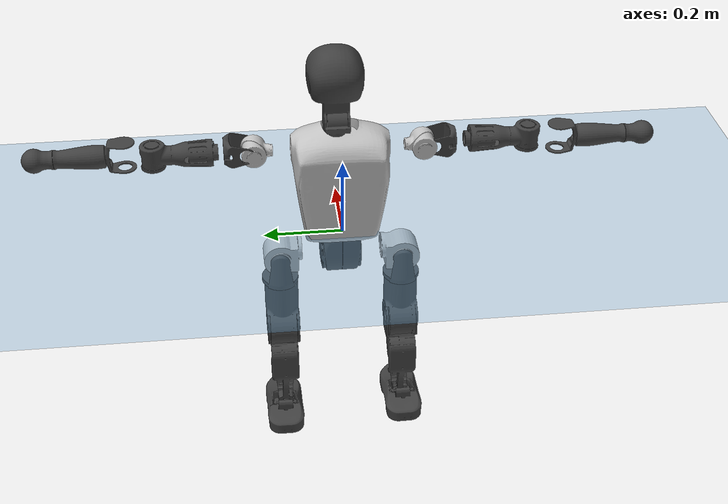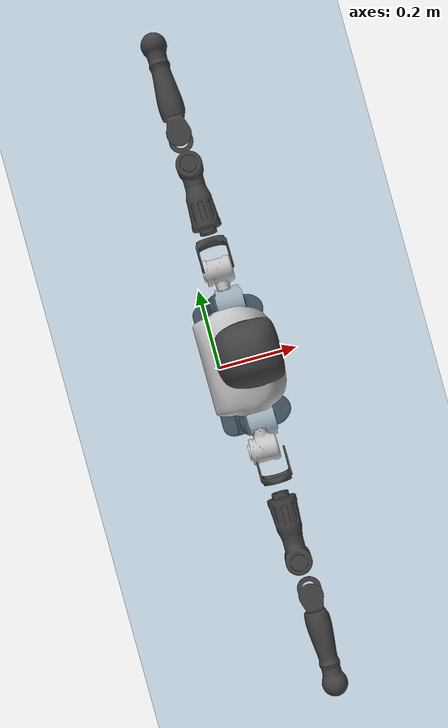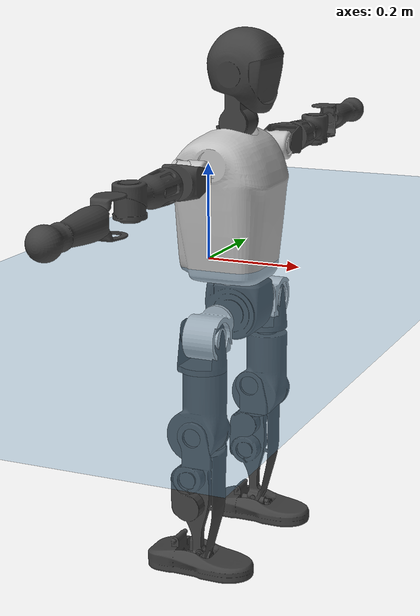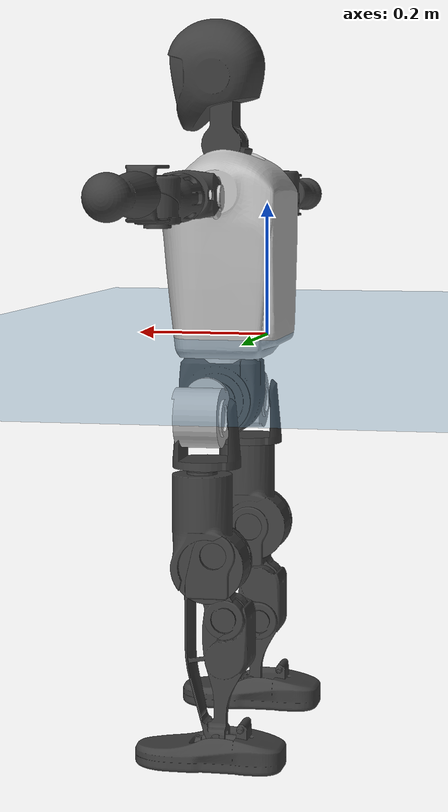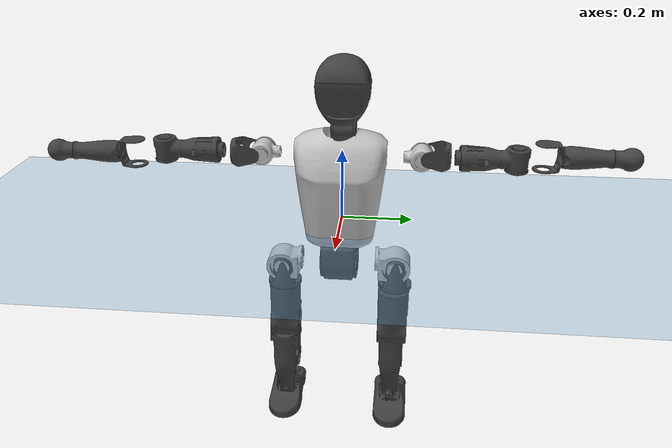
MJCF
<mujoco model="T1">
  <compiler angle="radian" assetdir="assets" balanceinertia="true" inertiafromgeom="false"/>

  <option timestep="0.005" density="1.2" viscosity="2e-05"/>

  <size nkey="1"/>

  <visual>
    <quality shadowsize="8192"/>
    <map shadowclip="0.5"/>
  </visual>

  <default>
    <default class="/">
      <joint armature="0.01" damping="0.01" frictionloss="0.1"/>
      <geom contype="0" conaffinity="0" group="1" solref="-1000 -80"/>
      <site size="0.01 0.005 0.005" group="5"/>
      <general forcelimited="true" biastype="affine" gainprm="25" biasprm="0 -25 -0.6"/>
      <default class="t1">
        <geom rgba="0.25 0.25 0.25 1"/>
        <default class="visual">
          <geom type="mesh" group="2"/>
        </default>
        <default class="collision">
          <geom group="3"/>
        </default>
        <default class="foot">
          <geom size="0.1115 0.05 0.015" type="box" condim="6" group="4" priority="1" solimp="0.015 1 0.015"/>
        </default>
        <default class="reward_collision_sphere">
          <geom group="5" rgba="1 0 0 1"/>
        </default>
      </default>
    </default>
  </default>

  <asset>
    <texture type="skybox" colorspace="auto" name="//unnamed_texture_0" builtin="gradient" rgb1="0.95 0.95 0.95" rgb2="0.95 0.95 0.95" width="100" height="600"/>
    <texture type="2d" colorspace="auto" name="texplane" builtin="checker" rgb1="0.345 0.575 0.748" rgb2="0.345 0.575 0.748" markrgb="1 1 1" width="512" height="512"/>
    <material name="MatPlane" class="/" texture="texplane" texuniform="true" texrepeat="2 2" specular="0.9"/>
    <mesh name="Trunk" class="/" file="Trunk.stl"/>
    <mesh name="H1" class="/" file="H1.stl"/>
    <mesh name="H2" class="/" file="H2.stl"/>
    <mesh name="AL1" class="/" file="AL1.stl"/>
    <mesh name="AL2" class="/" file="AL2.stl"/>
    <mesh name="AL3" class="/" file="AL3.stl"/>
    <mesh name="left_hand_link" class="/" file="left_hand_link.stl"/>
    <mesh name="AR1" class="/" file="AR1.stl"/>
    <mesh name="AR2" class="/" file="AR2.stl"/>
    <mesh name="AR3" class="/" file="AR3.stl"/>
    <mesh name="right_hand_link" class="/" file="right_hand_link.stl"/>
    <mesh name="Waist" class="/" file="Waist.stl"/>
    <mesh name="Hip_Pitch_Left" class="/" file="Hip_Pitch_Left.stl"/>
    <mesh name="Hip_Roll_Left" class="/" file="Hip_Roll_Left.stl"/>
    <mesh name="Hip_Yaw_Left" class="/" file="Hip_Yaw_Left.stl"/>
    <mesh name="Shank_Left" class="/" file="Shank_Left.stl"/>
    <mesh name="Ankle_Cross_Left" class="/" file="Ankle_Cross_Left.stl"/>
    <mesh name="left_foot_link" class="/" file="left_foot_link.stl"/>
    <mesh name="Hip_Pitch_Right" class="/" file="Hip_Pitch_Right.stl"/>
    <mesh name="Hip_Roll_Right" class="/" file="Hip_Roll_Right.stl"/>
    <mesh name="Hip_Yaw_Right" class="/" file="Hip_Yaw_Right.stl"/>
    <mesh name="Shank_Right" class="/" file="Shank_Right.stl"/>
    <mesh name="Ankle_Cross_Right" class="/" file="Ankle_Cross_Right.stl"/>
    <mesh name="right_foot_link" class="/" file="right_foot_link.stl"/>
  </asset>

  <worldbody>
    <geom name="floor" class="/" size="100 100 0.125" type="plane" group="0" material="MatPlane"/>
    <light name="toplight_shadow" class="/" pos="0 0 5" dir="0.0990148 0.0990148 -0.990148" type="directional" ambient="0.04 0.04 0.04" diffuse="0.55 0.55 0.55" specular="0.12 0.12 0.12"/>
    <light name="toplight_fill" class="/" pos="0 0 5" dir="0.0990148 0.0990148 -0.990148" type="directional" castshadow="false" ambient="0.04 0.04 0.04" diffuse="0.3 0.3 0.3" specular="0.08 0.08 0.08"/>
    <body name="trunk" childclass="t1" pos="-0.000599823 0.00145573 0.00102552" quat="1 0.0003473 -0.000526549 0.000597157">
      <inertial pos="0.0516021 -0.0103338 0.0911462" quat="0.99959 0.0212668 -0.0174905 -0.00778968" mass="19.4332" diaginertia="0.10582 0.652602 0.0432581"/>
      <joint name="//unnamed_joint_0" type="free" armature="0" damping="0" frictionloss="0"/>
      <geom name="//unnamed_geom_1" class="visual" rgba="0.76 0.76 0.76 1" mesh="Trunk"/>
      <geom name="//unnamed_geom_2" class="collision" size="0.0873093 0.116412 0.174619" pos="0.0613728 0 0.113326" type="box"/>
      <geom name="//unnamed_geom_3" class="reward_collision_sphere" size="0.133874" pos="0.0613728 0 0.0944386"/>
      <geom name="//unnamed_geom_4" class="reward_collision_sphere" size="0.0174619" pos="0.0613728 0.129634 0"/>
      <geom name="//unnamed_geom_5" class="reward_collision_sphere" size="0.0174619" pos="0.0613728 -0.129634 0"/>
      <geom name="//unnamed_geom_6" class="reward_collision_sphere" size="0.0174619" pos="0.0613728 0.163186 0.16999"/>
      <geom name="//unnamed_geom_7" class="reward_collision_sphere" size="0.0174619" pos="0.0613728 -0.163186 0.16999"/>
      <site name="imu" pos="0.0188963 0.0137198 -0.000574606" size="0.0116412"/>
      <camera name="track" pos="0 -3.05021 0" quat="0.707107 0.707107 0 0" mode="trackcom"/>
      <camera name="ego_camera" pos="0.124791 0 0.396642" quat="-0.5 -0.5 0.5 0.5"/>
      <body name="H1" pos="0.0647985 0.00731982 0.221378" quat="1 -5.81772e-05 -0.000456757 5.43404e-06">
        <inertial pos="-0.00237395 -0.0125567 0.0534332" quat="0.775487 -0.0413731 0.0205423 0.629672" mass="0.735422" diaginertia="0.000284342 0.00193868 0.000109624"/>
        <joint name="AAHead_yaw" pos="0 0 0" axis="-0.0084049 0.00418391 0.999956" range="-1.57741 1.73888" armature="0.0101132" damping="0" frictionloss="0.179548"/>
        <geom name="//unnamed_geom_8" class="visual" mesh="H1"/>
        <body name="H2" pos="-0.000368981 0.00119625 0.065433" quat="1 -0.000200501 -0.000762296 -0.00059451">
          <inertial pos="0.00837292 0.0105156 0.0944307" quat="0.982648 0.149587 -0.0716853 -0.0829931" mass="1.01781" diaginertia="0.00227829 0.0161725 0.00122827"/>
          <joint name="Head_pitch" pos="0 0 0" axis="1.66627e-05 -1 0.000652758" range="-1.26147 0.346756" armature="0.0112478" damping="0" frictionloss="0.143919"/>
          <geom name="//unnamed_geom_9" class="visual" mesh="H2"/>
          <geom name="//unnamed_geom_10" class="collision" size="0.0931299" pos="0.0102288 0 0.103882"/>
          <geom name="//unnamed_geom_11" class="reward_collision_sphere" size="0.104771" pos="0.0204576 0 0.0944386"/>
        </body>
      </body>
      <body name="AL1" pos="0.064117 0.166265 0.21031" quat="0.999991 -0.000162651 0.00133932 0.00403211">
        <inertial pos="-0.00111579 0.0710748 0.00177465" quat="0.529118 0.46022 -0.502267 0.505924" mass="0.822764" diaginertia="0.00151734 0.00959281 0.000226696"/>
        <joint name="Left_Shoulder_Pitch" pos="0 0 0" axis="-0.00146366 0.999996 0.00237751" range="-3.294 1.07525" armature="0.0120728" damping="0.00895776" frictionloss="0.119611"/>
        <geom name="//unnamed_geom_12" class="visual" rgba="0.76 0.76 0.76 1" mesh="AL1"/>
        <body name="AL2" pos="0.000220687 0.0647071 0.00511396" quat="0.999997 -0.00226159 9.56823e-06 0.00130635">
          <inertial pos="-0.00465696 0.0477821 -0.00361553" quat="0.499266 0.469886 -0.517614 0.511876" mass="0.250158" diaginertia="0.000469558 0.00292728 0.000121471"/>
          <joint name="Left_Shoulder_Roll" pos="0 0 0" axis="-0.999992 0.00158362 0.00367158" range="-1.58756 1.73003" armature="0.0121431" damping="0.00274786" frictionloss="0.113504"/>
          <geom name="//unnamed_geom_13" class="visual" mesh="AL2"/>
          <body name="AL3" pos="0.00170953 0.0816877 -0.00309428" quat="1 0.000155905 -1.85778e-05 -8.73303e-05">
            <inertial pos="0.00913694 0.1321 0.00396968" quat="0.694548 0.719225 0.0154601 -0.00891465" mass="1.36013" diaginertia="0.0132086 0.0972954 0.000423557"/>
            <joint name="Left_Elbow_Pitch" pos="0 0 0" axis="0.00135721 -0.999902 -0.0139567" range="-2.25577 2.09264" armature="0.0105981" damping="0" frictionloss="0.106581"/>
            <geom name="//unnamed_geom_14" class="visual" mesh="AL3"/>
            <geom name="//unnamed_geom_15" class="collision" size="0.0349237 0.0873093" pos="0 0.0762552 0" quat="0.707105 0.707108 0 0" type="cylinder"/>
            <geom name="//unnamed_geom_16" class="reward_collision_sphere" size="0.0419084"/>
            <body name="left_hand_link" pos="-0.00250516 0.215624 0.00969597" quat="1 -0.000191052 -0.000207124 0.000468997">
              <inertial pos="0.00118744 0.165487 0.00257618" quat="0.706347 0.707865 0.00059932 -0.000911066" mass="0.522027" diaginertia="0.00990677 0.0654485 0.000158466"/>
              <joint name="Left_Elbow_Yaw" pos="0 0 0" axis="0.00610277 -0.00251792 0.999978" range="-2.26644 -0.0274877" armature="0.0109668" damping="0.0597765" frictionloss="0.07862"/>
              <geom name="//unnamed_geom_17" class="visual" mesh="left_hand_link"/>
              <geom name="//unnamed_geom_18" class="collision" size="0.0349237 0.101861" pos="0 0.198263 0" quat="0.707105 0.707108 0 0" type="cylinder"/>
              <geom name="//unnamed_geom_19" class="reward_collision_sphere" size="0.0582062"/>
              <geom name="//unnamed_geom_20" class="reward_collision_sphere" size="0.0407443" pos="0 0.167761 0"/>
              <geom name="//unnamed_geom_21" class="reward_collision_sphere" size="0.0407443" pos="0 0.327897 0"/>
            </body>
          </body>
        </body>
      </body>
      <body name="AR1" pos="0.0567684 -0.1618 0.211266" quat="0.999997 0.00215073 0.00020455 -0.000684303">
        <inertial pos="0.0034679 -0.0680083 0.00899004" quat="0.505943 0.484429 -0.478296 0.529701" mass="0.74126" diaginertia="0.00150645 0.0100618 0.00020065"/>
        <joint name="Right_Shoulder_Pitch" pos="0 0 0" axis="-0.00667462 -0.999865 -0.0149949" range="-1.23831 3.2767" armature="0.0121069" damping="0.047457" frictionloss="0.171648"/>
        <geom name="//unnamed_geom_22" class="visual" rgba="0.76 0.76 0.76 1" mesh="AR1"/>
        <body name="AR2" pos="0.00899184 -0.0714767 0.000547372" quat="1 0.000220661 0.000221641 -0.000482467">
          <inertial pos="0.00778105 -0.0475279 0.00135404" quat="0.536129 0.497193 -0.475789 0.488866" mass="0.253955" diaginertia="0.000419803 0.0028508 0.000123161"/>
          <joint name="Right_Shoulder_Roll" pos="0 0 0" axis="-0.99967 0.0249532 0.00602354" range="-1.75615 1.54328" armature="0.0120767" damping="0.0592588" frictionloss="0.115576"/>
          <geom name="//unnamed_geom_23" class="visual" mesh="AR2"/>
          <body name="AR3" pos="-0.00186245 -0.0928371 0.00187044" quat="0.999998 0.000867702 -0.00110384 0.00163465">
            <inertial pos="-0.000589246 -0.131511 -7.08329e-06" quat="0.70409 0.709746 -0.0213992 0.00779248" mass="1.5206" diaginertia="0.0136533 0.112763 0.000449758"/>
            <joint name="Right_Elbow_Pitch" pos="0 0 0" axis="0.00649077 0.999979 0.000711983" range="-2.29759 2.25092" armature="0.0118108" damping="0" frictionloss="0.120452"/>
            <geom name="//unnamed_geom_24" class="visual" mesh="AR3"/>
            <geom name="//unnamed_geom_25" class="collision" size="0.0349237 0.0873093" pos="0 -0.0762552 0" quat="0.707105 0.707108 0 0" type="cylinder"/>
            <geom name="//unnamed_geom_26" class="reward_collision_sphere" size="0.0419084"/>
            <body name="right_hand_link" pos="0.00614955 -0.22934 -0.0100056" quat="0.999997 0.00123965 -0.000739622 -0.00192908">
              <inertial pos="0.0023715 -0.172351 -0.00106088" quat="0.704933 0.709274 -0.000245902 -0.000462751" mass="0.495605" diaginertia="0.00877978 0.0643637 0.000159407"/>
              <joint name="Right_Elbow_Yaw" pos="0 0 0" axis="0.00265825 -0.00517138 0.999983" stiffness="0.00424033" range="-0.0961694 2.4022" armature="0.0106057" damping="0.0196974" frictionloss="0.0635842"/>
              <geom name="//unnamed_geom_27" class="visual" mesh="right_hand_link"/>
              <geom name="//unnamed_geom_28" class="collision" size="0.0349237 0.101861" pos="0 -0.198263 0" quat="0.707105 0.707108 0 0" type="cylinder"/>
              <geom name="//unnamed_geom_29" class="reward_collision_sphere" size="0.0582062"/>
              <geom name="//unnamed_geom_30" class="reward_collision_sphere" size="0.0407443" pos="0 -0.167761 0"/>
              <geom name="//unnamed_geom_31" class="reward_collision_sphere" size="0.0407443" pos="0 -0.327897 0"/>
            </body>
          </body>
        </body>
      </body>
      <body name="Waist" pos="0.0702465 -0.00211435 -0.0998736" quat="1 -0.00045953 -0.00013471 -0.000298524">
        <inertial pos="0.013523 0.000324512 0.00819056" quat="0.983146 0.00715876 -0.18258 0.00609655" mass="4.5897" diaginertia="0.00710614 0.0447696 0.00367649"/>
        <joint name="Waist" pos="0 0 0" axis="-0.00229431 -0.00392383 0.99999" range="-1.49667 1.59494" armature="0.00880534" damping="0" frictionloss="0.113751"/>
        <geom name="//unnamed_geom_32" class="visual" mesh="Waist"/>
        <body name="Hip_Pitch_Left" pos="0.00190403 0.157809 0.00742367" quat="1 -0.0004286 0.000306763 -0.000383164">
          <inertial pos="0.0015661 -0.0177456 -0.0223945" quat="0.974414 0.222972 0.0244521 -0.0142654" mass="1.4489" diaginertia="0.00205315 0.0114613 0.000965231"/>
          <joint name="Left_Hip_Pitch" pos="0 0 0" axis="0.00041295 1 -0.000165354" range="-1.79803 1.39326" armature="0.0059727" damping="0" frictionloss="0.108723"/>
          <geom name="//unnamed_geom_33" class="visual" rgba="0.76 0.76 0.76 1" mesh="Hip_Pitch_Left"/>
          <body name="Hip_Roll_Left" pos="-0.00868339 0.00269195 -0.0154578" quat="0.999999 0.00109693 0.00116745 0.000272122">
            <inertial pos="0.00430464 -0.000181371 -0.0534491" quat="0.673659 -0.0010335 -0.0192185 0.738791" mass="0.667857" diaginertia="0.00208431 0.0118057 0.000382167"/>
            <joint name="Left_Hip_Roll" pos="0 0 0" axis="-0.999318 -0.00998928 -0.0355627" range="-1.57484 0.206751" armature="0.00665081" damping="0.00446023" frictionloss="0.138231"/>
            <geom name="//unnamed_geom_34" class="visual" mesh="Hip_Roll_Left"/>
            <geom name="//unnamed_geom_35" class="reward_collision_sphere" size="0.0640268"/>
            <body name="Hip_Yaw_Left" pos="0.00513821 -0.0026538 -0.0873428" quat="1 -0.000438663 0.000375671 -0.000352032">
              <inertial pos="0.000107747 -0.00071178 -0.0849209" quat="0.701908 -0.0324702 -0.0293049 0.710924" mass="3.35853" diaginertia="0.0275119 0.227235 0.00185841"/>
              <joint name="Left_Hip_Yaw" pos="0 0 0" axis="-0.00342219 -0.00103344 -0.999994" range="-0.929557 0.842162" armature="0.0125344" damping="0.0138737" frictionloss="0.111617"/>
              <geom name="//unnamed_geom_36" class="visual" mesh="Hip_Yaw_Left"/>
              <geom name="//unnamed_geom_37" class="collision" size="0.0582062 0.0931299" type="cylinder"/>
              <body name="Shank_Left" pos="-0.0242665 -0.000961286 -0.115323" quat="1 -0.00022015 2.93587e-05 -6.79106e-05">
                <inertial pos="-0.00634446 -0.0070258 -0.125567" quat="0.99759 0.00013081 -0.021921 0.0658286" mass="3.01903" diaginertia="0.0380521 0.272732 0.00136173"/>
                <joint name="Left_Knee_Pitch" pos="0 0 0" axis="0.0140669 0.9999 -0.00115596" range="-0.059779 2.3891" armature="0.011596" damping="0" frictionloss="0.114926"/>
                <geom name="//unnamed_geom_38" class="visual" mesh="Shank_Left"/>
                <geom name="//unnamed_geom_39" class="collision" size="0.0582062 0.0873093" pos="0 0 -0.113326" type="cylinder"/>
                <geom name="//unnamed_geom_40" class="reward_collision_sphere" size="0.075668"/>
                <body name="Ankle_Cross_Left" pos="0.00197404 -0.00133822 -0.273042" quat="1 0.000182168 -0.000912443 -8.11436e-05">
                  <inertial pos="-0.00133096 -0.00581788 -0.0110814" quat="0.440283 0.575315 0.539921 0.428543" mass="0.103682" diaginertia="2.8929e-05 0.000219485 8.28699e-06"/>
                  <joint name="Left_Ankle_Pitch" pos="0 0 0" axis="0.000791103 1 0.000411198" range="-1.04728 0.361242" armature="0.0133557" damping="0.00470033" frictionloss="0.112472"/>
                  <geom name="//unnamed_geom_41" class="visual" mesh="Ankle_Cross_Left"/>
                  <body name="left_foot_link" pos="0.00137923 0.00514154 -0.019427" quat="0.999999 0.00112909 -0.000655743 -0.000522129">
                    <inertial pos="0.00589545 0.000505564 -0.0015908" quat="-0.000245358 0.62267 0.00252847 0.782481" mass="1.21243" diaginertia="0.00365464 0.0205314 0.00156085"/>
                    <joint name="Left_Ankle_Roll" pos="0 0 0" axis="-0.999945 -0.00204244 0.0102639" range="-0.455937 0.434245" armature="0.0114411" damping="0.00511636" frictionloss="0.113881"/>
                    <geom name="//unnamed_geom_42" class="visual" mesh="left_foot_link"/>
                    <geom name="left_foot" class="foot" size="0.111165 0.0378716 0.0201149" pos="0.0102288 0 -0.0141658"/>
                    <geom name="//unnamed_geom_44" class="reward_collision_sphere" size="0.0605344" pos="0.0102288 0 -0.0141658"/>
                    <geom name="//unnamed_geom_45" class="reward_collision_sphere" size="0.0349237" pos="0.0971736 -0.0350774 -0.0141658"/>
                    <geom name="//unnamed_geom_46" class="reward_collision_sphere" size="0.0349237" pos="-0.0716016 -0.0350774 -0.0141658"/>
                    <site name="left_foot" class="foot" pos="0.0102288 0 -0.0141658" size="0.0116412"/>
                  </body>
                </body>
              </body>
            </body>
          </body>
        </body>
        <body name="Hip_Pitch_Right" pos="-0.00100859 -0.162137 -0.000397838" quat="0.999991 -0.00388073 0.00131622 0.00101478">
          <inertial pos="0.00728058 0.012308 -0.0248252" quat="0.973075 -0.229855 0.0166152 -0.00385966" mass="1.4948" diaginertia="0.0018821 0.0113088 0.00099431"/>
          <joint name="Right_Hip_Pitch" pos="0 0 0" axis="0.00151129 -0.999992 -0.00364907" range="-1.56326 2.0007" armature="0.0145821" damping="0" frictionloss="0.118555"/>
          <geom name="//unnamed_geom_47" class="visual" rgba="0.76 0.76 0.76 1" mesh="Hip_Pitch_Right"/>
          <body name="Hip_Roll_Right" pos="-0.00920748 0.00260519 -0.011951" quat="0.999999 -0.000766113 0.00044821 -0.00129897">
            <inertial pos="0.00204161 -0.00129179 -0.0553064" quat="0.737249 0.0124334 0.00314685 0.675499" mass="0.632567" diaginertia="0.00195335 0.0115984 0.000393512"/>
            <joint name="Right_Hip_Roll" pos="0 0 0" axis="-0.999825 -0.0149732 0.0112308" range="-0.412313 1.55967" armature="0.0114221" damping="0" frictionloss="0.0969504"/>
            <geom name="//unnamed_geom_48" class="visual" mesh="Hip_Roll_Right"/>
            <geom name="//unnamed_geom_49" class="reward_collision_sphere" size="0.0640268"/>
            <body name="Hip_Yaw_Right" pos="0.00303246 0.000157297 -0.0755226" quat="1 -0.000440703 -0.000488152 -0.000225517">
              <inertial pos="-0.00542544 0.00334913 -0.0752788" quat="0.712001 -0.0317413 -0.0298831 0.700823" mass="3.43156" diaginertia="0.0294131 0.1978 0.00204023"/>
              <joint name="Right_Hip_Yaw" pos="0 0 0" axis="-0.0546821 0.00525955 -0.99849" range="-0.991281 0.993537" armature="0.00723467" damping="0.0547063" frictionloss="0.115682"/>
              <geom name="//unnamed_geom_50" class="visual" mesh="Hip_Yaw_Right"/>
              <geom name="//unnamed_geom_51" class="collision" size="0.0582062 0.0931299" type="cylinder"/>
              <body name="Shank_Right" pos="-0.00955023 -0.00205796 -0.133461" quat="0.999998 -0.000397515 0.00182124 -0.00064586">
                <inertial pos="-0.00681761 0.000628131 -0.109373" quat="0.999246 -0.00439181 -0.0288434 -0.0256161" mass="2.45036" diaginertia="0.0343293 0.262122 0.00125214"/>
                <joint name="Right_Knee_Pitch" pos="0 0 0" axis="-0.0313596 -0.999434 0.0121444" range="-2.51416 -0.03833" armature="0.00597875" damping="0" frictionloss="0.119145"/>
                <geom name="//unnamed_geom_52" class="visual" mesh="Shank_Right"/>
                <geom name="//unnamed_geom_53" class="collision" size="0.0582062 0.0873093" pos="0 0 -0.113326" type="cylinder"/>
                <geom name="//unnamed_geom_54" class="reward_collision_sphere" size="0.075668"/>
                <body name="Ankle_Cross_Right" pos="0.00399586 -0.000545461 -0.262556" quat="1 0.000472154 4.97895e-05 0.000554335">
                  <inertial pos="-0.00514572 0.00465883 -0.00768051" quat="0.445101 0.554206 0.55128 0.436844" mass="0.108441" diaginertia="3.07137e-05 0.000199387 7.94246e-06"/>
                  <joint name="Right_Ankle_Pitch" pos="0 0 0" axis="0.00901292 -0.999872 -0.0132298" stiffness="0.0363277" range="-0.199272 1.02525" armature="0.0114367" damping="0.0111981" frictionloss="0.114143"/>
                  <geom name="//unnamed_geom_55" class="visual" mesh="Ankle_Cross_Right"/>
                  <body name="right_foot_link" pos="-0.00857029 -0.00100657 -0.00695554" quat="1 -1.11799e-05 -0.000135329 0.000282378">
                    <inertial pos="0.00977056 9.82519e-05 -0.00866207" quat="0.0027738 0.619997 0.00105409 0.784599" mass="1.10618" diaginertia="0.00307289 0.0216924 0.00171993"/>
                    <joint name="Right_Ankle_Roll" pos="0 0 0" axis="-0.999695 -0.00927306 -0.0229094" range="-0.253935 0.436792" armature="0.012662" damping="0.0458674" frictionloss="0.123574"/>
                    <geom name="//unnamed_geom_56" class="visual" mesh="right_foot_link"/>
                    <geom name="right_foot" class="foot" size="0.0868851 0.0596165 0.0181888" pos="0.0102288 0 -0.0141658"/>
                    <geom name="//unnamed_geom_58" class="reward_collision_sphere" size="0.0465649"/>
                    <geom name="//unnamed_geom_59" class="reward_collision_sphere" size="0.0349237" pos="0.0102288 0 -0.0141658"/>
                    <geom name="//unnamed_geom_60" class="reward_collision_sphere" size="0.0349237" pos="0.0971736 0.0350774 -0.0141658"/>
                    <geom name="//unnamed_geom_61" class="reward_collision_sphere" size="0.0349237" pos="-0.0716016 0.0350774 -0.0141658"/>
                    <site name="right_foot" class="foot" pos="0.0102288 0 -0.0141658" size="0.0116412"/>
                  </body>
                </body>
              </body>
            </body>
          </body>
        </body>
      </body>
    </body>
  </worldbody>

  <contact>
    <pair class="/" geom1="floor" geom2="left_foot" name="//unnamed_contact_0"/>
    <pair class="/" geom1="floor" geom2="right_foot" name="//unnamed_contact_1"/>
  </contact>

  <actuator>
    <general name="AAHead_yaw" class="/" joint="AAHead_yaw" forcerange="-8.06385 8.06385" gainprm="33.3639" biasprm="0 -33.3639 -0.675371"/>
    <general name="Head_pitch" class="/" joint="Head_pitch" forcerange="-7.97857 7.97857" gainprm="33.3639" biasprm="0 -33.3639 -0.675371"/>
    <general name="Left_Shoulder_Pitch" class="/" joint="Left_Shoulder_Pitch" forcerange="-23.9454 23.9454" gainprm="33.3639" biasprm="0 -33.3639 -0.675371"/>
    <general name="Left_Shoulder_Roll" class="/" joint="Left_Shoulder_Roll" forcerange="-21.4759 21.4759" gainprm="33.3639" biasprm="0 -33.3639 -0.675371"/>
    <general name="Left_Elbow_Pitch" class="/" joint="Left_Elbow_Pitch" forcerange="-20.9669 20.9669" gainprm="33.3639" biasprm="0 -33.3639 -0.675371"/>
    <general name="Left_Elbow_Yaw" class="/" joint="Left_Elbow_Yaw" forcerange="-21.7316 21.7316" gainprm="33.3639" biasprm="0 -33.3639 -0.675371"/>
    <general name="Right_Shoulder_Pitch" class="/" joint="Right_Shoulder_Pitch" forcerange="-20.466 20.466" gainprm="33.3639" biasprm="0 -33.3639 -0.675371"/>
    <general name="Right_Shoulder_Roll" class="/" joint="Right_Shoulder_Roll" forcerange="-23.7011 23.7011" gainprm="33.3639" biasprm="0 -33.3639 -0.675371"/>
    <general name="Right_Elbow_Pitch" class="/" joint="Right_Elbow_Pitch" forcerange="-14.0099 14.0099" gainprm="33.3639" biasprm="0 -33.3639 -0.675371"/>
    <general name="Right_Elbow_Yaw" class="/" joint="Right_Elbow_Yaw" forcerange="-19.9817 19.9817" gainprm="33.3639" biasprm="0 -33.3639 -0.675371"/>
    <general name="Waist" class="/" joint="Waist" forcerange="-33.3163 33.3163" gainprm="33.3639" biasprm="0 -33.3639 -0.675371"/>
    <general name="Left_Hip_Pitch" class="/" joint="Left_Hip_Pitch" forcerange="-55.9669 55.9669" gainprm="33.3639" biasprm="0 -33.3639 -0.675371"/>
    <general name="Left_Hip_Roll" class="/" joint="Left_Hip_Roll" forcerange="-26.7838 26.7838" gainprm="33.3639" biasprm="0 -33.3639 -0.675371"/>
    <general name="Left_Hip_Yaw" class="/" joint="Left_Hip_Yaw" forcerange="-43.9827 43.9827" gainprm="33.3639" biasprm="0 -33.3639 -0.675371"/>
    <general name="Left_Knee_Pitch" class="/" joint="Left_Knee_Pitch" forcerange="-72.7655 72.7655" gainprm="33.3639" biasprm="0 -33.3639 -0.675371"/>
    <general name="Left_Ankle_Pitch" class="/" joint="Left_Ankle_Pitch" forcerange="-22.1828 22.1828" gainprm="33.3639" biasprm="0 -33.3639 -0.675371"/>
    <general name="Left_Ankle_Roll" class="/" joint="Left_Ankle_Roll" forcerange="-12.3591 12.3591" gainprm="33.3639" biasprm="0 -33.3639 -0.675371"/>
    <general name="Right_Hip_Pitch" class="/" joint="Right_Hip_Pitch" forcerange="-52.6115 52.6115" gainprm="33.3639" biasprm="0 -33.3639 -0.675371"/>
    <general name="Right_Hip_Roll" class="/" joint="Right_Hip_Roll" forcerange="-36.8645 36.8645" gainprm="33.3639" biasprm="0 -33.3639 -0.675371"/>
    <general name="Right_Hip_Yaw" class="/" joint="Right_Hip_Yaw" forcerange="-22.6625 22.6625" gainprm="33.3639" biasprm="0 -33.3639 -0.675371"/>
    <general name="Right_Knee_Pitch" class="/" joint="Right_Knee_Pitch" forcerange="-69.2791 69.2791" gainprm="33.3639" biasprm="0 -33.3639 -0.675371"/>
    <general name="Right_Ankle_Pitch" class="/" joint="Right_Ankle_Pitch" forcerange="-22.6961 22.6961" gainprm="33.3639" biasprm="0 -33.3639 -0.675371"/>
    <general name="Right_Ankle_Roll" class="/" joint="Right_Ankle_Roll" forcerange="-20.1202 20.1202" gainprm="33.3639" biasprm="0 -33.3639 -0.675371"/>
  </actuator>

  <sensor>
    <gyro site="imu" name="imu_angular_velocity"/>
    <velocimeter site="imu" name="imu_linear_velocity"/>
    <framelinvel objtype="site" objname="left_foot" name="left_foot_global_linear_velocity"/>
    <framelinvel objtype="site" objname="right_foot" name="right_foot_global_linear_velocity"/>
  </sensor>

  <keyframe>
    <key name="home" qpos="0 0 0.6385 1 0 0 0 0 0 0 1.4 0 -0.4 0 -1.4 0 0.4 0 -0.4 0 0 0.8 -0.4 0 0.4 0 0 -0.8 0.4 0"/>
  </keyframe>
</mujoco>
